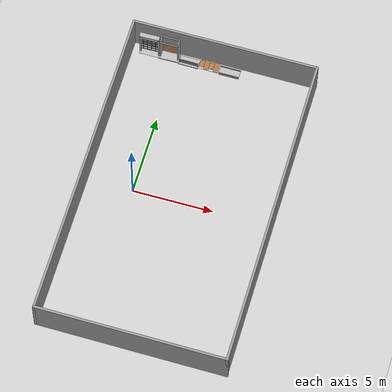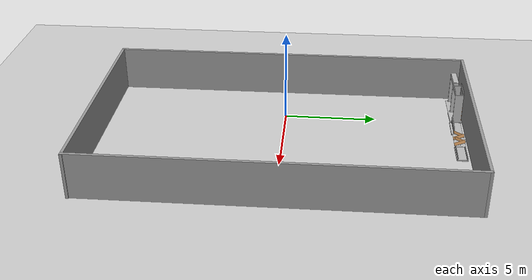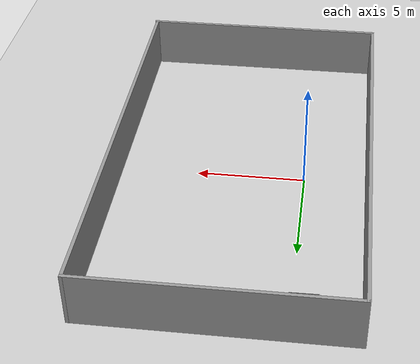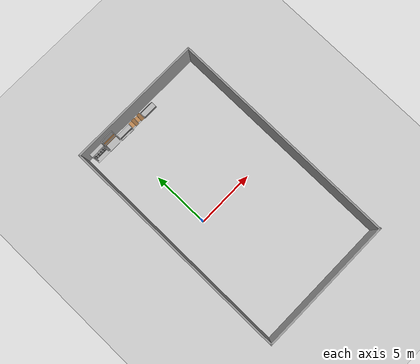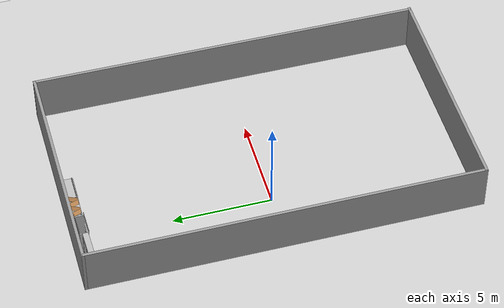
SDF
<sdf version="1.7">
 <world name="default">
  <light name="sun" type="directional">
   <pose>0 0 10 0 -0 0</pose>
   <diffuse>0.8 0.8 0.8 1</diffuse>
   <specular>0.2 0.2 0.2 1</specular>
   <attenuation>
    <range>1000</range>
    <constant>0.9</constant>
    <linear>0.01</linear>
    <quadratic>0.001</quadratic>
   </attenuation>
   <direction>-0.5 0.1 -0.9</direction>
   <spot><inner_angle>0</inner_angle><outer_angle>0</outer_angle><falloff>0</falloff></spot>
  </light>
  <model name="ground_plane">
   <static>1</static>
   <link name="link">
    <collision name="collision">
     <geometry><plane><normal>0 0 1</normal><size>100 100</size></plane></geometry>
     <surface>
      <contact><collide_bitmask>65535</collide_bitmask></contact>
      <friction><ode><mu>100</mu><mu2>50</mu2></ode></friction>
     </surface>
    </collision>
    <visual name="visual">
     <cast_shadows>0</cast_shadows>
     <geometry><plane><normal>0 0 1</normal><size>100 100</size></plane></geometry>
     <material>
      <script><uri>file://media/materials/scripts/gazebo.material</uri><name>Gazebo/Grey</name></script>
     </material>
    </visual>
   </link>
  </model>
  <gravity>0 0 -9.8</gravity>
  <magnetic_field>6e-06 2.3e-05 -4.2e-05</magnetic_field>
  <atmosphere type="adiabatic"/>
  <physics type="ode">
   <max_step_size>0.001</max_step_size>
   <real_time_factor>1</real_time_factor>
   <real_time_update_rate>1000</real_time_update_rate>
  </physics>
  <scene><ambient>0.4 0.4 0.4 1</ambient><background>0.7 0.7 0.7 1</background><shadows>1</shadows></scene>
  <audio><device>default</device></audio>
  <spherical_coordinates>
   <surface_model>EARTH_WGS84</surface_model>
   <latitude_deg>0</latitude_deg>
   <longitude_deg>0</longitude_deg>
   <elevation>0</elevation>
   <heading_deg>0</heading_deg>
  </spherical_coordinates>
  <model name="wallsss">
   <pose>2.90151 0.021136 0 0 -0 0</pose>
   <link name="Wall_0">
    <collision name="Wall_0_Collision">
     <geometry><box><size>11.75 0.15 2.5</size></box></geometry>
     <pose>0 0 1.25 0 -0 0</pose>
    </collision>
    <visual name="Wall_0_Visual">
     <pose>0 0 1.25 0 -0 0</pose>
     <geometry><box><size>11.75 0.15 2.5</size></box></geometry>
     <material>
      <script><uri>file://media/materials/scripts/gazebo.material</uri><name>Gazebo/Grey</name></script>
      <ambient>1 1 1 1</ambient>
     </material>
     <meta><layer>0</layer></meta>
    </visual>
    <pose>0.023262 -9.925 0 0 -0 0</pose>
   </link>
   <link name="Wall_1">
    <collision name="Wall_1_Collision">
     <geometry><box><size>20 0.15 2.5</size></box></geometry>
     <pose>0 0 1.25 0 -0 0</pose>
    </collision>
    <visual name="Wall_1_Visual">
     <pose>0 0 1.25 0 -0 0</pose>
     <geometry><box><size>20 0.15 2.5</size></box></geometry>
     <material>
      <script><uri>file://media/materials/scripts/gazebo.material</uri><name>Gazebo/Grey</name></script>
      <ambient>1 1 1 1</ambient>
     </material>
     <meta><layer>0</layer></meta>
    </visual>
    <pose>5.77674 -0 0 0 -0 1.5708</pose>
   </link>
   <link name="Wall_2">
    <collision name="Wall_2_Collision">
     <geometry><box><size>11.75 0.15 2.5</size></box></geometry>
     <pose>0 0 1.25 0 -0 0</pose>
    </collision>
    <visual name="Wall_2_Visual">
     <pose>0 0 1.25 0 -0 0</pose>
     <geometry><box><size>11.75 0.15 2.5</size></box></geometry>
     <material>
      <script><uri>file://media/materials/scripts/gazebo.material</uri><name>Gazebo/Grey</name></script>
      <ambient>1 1 1 1</ambient>
     </material>
     <meta><layer>0</layer></meta>
    </visual>
    <pose>-0.023261 9.925 0 0 -0 3.14159</pose>
   </link>
   <link name="Wall_3">
    <collision name="Wall_3_Collision">
     <geometry><box><size>20 0.15 2.5</size></box></geometry>
     <pose>0 0 1.25 0 -0 0</pose>
    </collision>
    <visual name="Wall_3_Visual">
     <pose>0 0 1.25 0 -0 0</pose>
     <geometry><box><size>20 0.15 2.5</size></box></geometry>
     <material>
      <script><uri>file://media/materials/scripts/gazebo.material</uri><name>Gazebo/Grey</name></script>
      <ambient>1 1 1 1</ambient>
     </material>
     <meta><layer>0</layer></meta>
    </visual>
    <pose>-5.82326 -0 0 0 -0 -1.5708</pose>
   </link>
   <static>1</static>
  </model>
  <model name="frc2016_chevaldefrise">
   <link name="base">
    <inertial>
     <mass>10</mass>
     <pose>0 0 0.15672 0 -0 0</pose>
     <inertia><ixx>0.380221</ixx><ixy>0</ixy><ixz>0</ixz><iyy>1.43365</iyy><iyz>0</iyz><izz>1.64745</izz></inertia>
    </inertial>
    <visual name="platform">
     <pose>0 0 0.06968 0 -0 0</pose>
     <geometry><box><size>1.27 0.5969 0.003175</size></box></geometry>
    </visual>
    <collision name="platform">
     <pose>0 0 0.06968 0 -0 0</pose>
     <geometry><box><size>1.27 0.5969 0.003175</size></box></geometry>
    </collision>
    <visual name="bar">
     <pose>0 0 0.16855 0 1.5707 0</pose>
     <geometry><cylinder><radius>0.02108</radius><length>1.273</length></cylinder></geometry>
    </visual>
    <collision name="bar">
     <pose>0 0 0.16855 0 1.5707 0</pose>
     <geometry><cylinder><radius>0.02108</radius><length>1.27</length></cylinder></geometry>
    </collision>
    <visual name="castor1">
     <pose>-0.45653 -0.16581 0.03175 0 -0 0</pose>
     <geometry><sphere><radius>0.03175</radius></sphere></geometry>
    </visual>
    <collision name="castor1">
     <pose>-0.45653 -0.16581 0.03175 0 -0 0</pose>
     <geometry><sphere><radius>0.03175</radius></sphere></geometry>
    </collision>
    <visual name="castor2">
     <pose>-0.27855 0.21408 0.03175 0 -0 0</pose>
     <geometry><sphere><radius>0.03175</radius></sphere></geometry>
    </visual>
    <collision name="castor2">
     <pose>-0.27855 0.21408 0.03175 0 -0 0</pose>
     <geometry><sphere><radius>0.03175</radius></sphere></geometry>
    </collision>
    <visual name="castor3">
     <pose>0.28191 0.21419 0.03175 0 -0 0</pose>
     <geometry><sphere><radius>0.03175</radius></sphere></geometry>
    </visual>
    <collision name="castor3">
     <pose>0.28191 0.21419 0.03175 0 -0 0</pose>
     <geometry><sphere><radius>0.03175</radius></sphere></geometry>
    </collision>
    <visual name="castor4">
     <pose>0.45965 -0.16602 0.03175 0 -0 0</pose>
     <geometry><sphere><radius>0.03175</radius></sphere></geometry>
    </visual>
    <collision name="castor4">
     <pose>0.45965 -0.16602 0.03175 0 -0 0</pose>
     <geometry><sphere><radius>0.03175</radius></sphere></geometry>
    </collision>
   </link>
   <link name="slant1">
    <pose>-0.4572 0.01307 0.1997 -0.39732 0 0</pose>
    <inertial>
     <pose>0 0.1 0 0 -0 0</pose>
     <mass>2</mass>
     <inertia>
      <ixx>0.0606857</ixx>
      <ixy>0</ixy>
      <ixz>0</ixz>
      <iyy>0.0148723</iyy>
      <iyz>0</iyz>
      <izz>0.0755042</izz>
     </inertia>
    </inertial>
    <visual name="visual">
     <geometry><box><size>0.29845 0.593285 0.0127</size></box></geometry>
     <material><script><name>Gazebo/WoodFloor</name><uri>__default__</uri></script></material>
    </visual>
    <collision name="collision"><geometry><box><size>0.29845 0.593285 0.0127</size></box></geometry></collision>
   </link>
   <link name="slant2">
    <pose>-0.1524 -0.01307 0.1997 0.39732 -0 0</pose>
    <inertial>
     <mass>2</mass>
     <pose>0 -0.1 0 0 -0 0</pose>
     <inertia>
      <ixx>0.0606857</ixx>
      <ixy>0</ixy>
      <ixz>0</ixz>
      <iyy>0.0148723</iyy>
      <iyz>0</iyz>
      <izz>0.0755042</izz>
     </inertia>
    </inertial>
    <visual name="visual">
     <geometry><box><size>0.29845 0.593285 0.0127</size></box></geometry>
     <material><script><name>Gazebo/WoodFloor</name><uri>__default__</uri></script></material>
    </visual>
    <collision name="collision"><geometry><box><size>0.29845 0.593285 0.0127</size></box></geometry></collision>
   </link>
   <link name="slant3">
    <pose>0.1524 0.01307 0.1997 -0.39732 0 0</pose>
    <inertial>
     <pose>0 0.1 0 0 -0 0</pose>
     <mass>2</mass>
     <inertia>
      <ixx>0.0606857</ixx>
      <ixy>0</ixy>
      <ixz>0</ixz>
      <iyy>0.0148723</iyy>
      <iyz>0</iyz>
      <izz>0.0755042</izz>
     </inertia>
    </inertial>
    <visual name="visual">
     <geometry><box><size>0.29845 0.593285 0.0127</size></box></geometry>
     <material><script><name>Gazebo/WoodFloor</name><uri>__default__</uri></script></material>
    </visual>
    <collision name="collision"><geometry><box><size>0.29845 0.593285 0.0127</size></box></geometry></collision>
   </link>
   <link name="slant4">
    <pose>0.4572 -0.01307 0.1997 0.39732 -0 0</pose>
    <inertial>
     <pose>0 -0.1 0 0 -0 0</pose>
     <mass>2</mass>
     <inertia>
      <ixx>0.0606857</ixx>
      <ixy>0</ixy>
      <ixz>0</ixz>
      <iyy>0.0148723</iyy>
      <iyz>0</iyz>
      <izz>0.0755042</izz>
     </inertia>
    </inertial>
    <visual name="visual">
     <geometry><box><size>0.29845 0.593285 0.0127</size></box></geometry>
     <material><script><name>Gazebo/WoodFloor</name><uri>__default__</uri></script></material>
    </visual>
    <collision name="collision"><geometry><box><size>0.29845 0.593285 0.0127</size></box></geometry></collision>
   </link>
   <joint name="slant1_joint" type="revolute">
    <parent>base</parent>
    <child>slant1</child>
    <axis>
     <xyz>1 0 0</xyz>
     <limit><lower>0</lower><upper>1.5707</upper></limit>
     <dynamics><spring_reference>0</spring_reference><spring_stiffness>0</spring_stiffness></dynamics>
    </axis>
   </joint>
   <joint name="slant2_joint" type="revolute">
    <parent>base</parent>
    <child>slant2</child>
    <axis>
     <xyz>1 0 0</xyz>
     <limit><lower>-1.5707</lower><upper>0</upper></limit>
     <dynamics><spring_reference>0</spring_reference><spring_stiffness>0</spring_stiffness></dynamics>
    </axis>
   </joint>
   <joint name="slant3_joint" type="revolute">
    <parent>base</parent>
    <child>slant3</child>
    <axis>
     <xyz>1 0 0</xyz>
     <limit><lower>0</lower><upper>1.5707</upper></limit>
     <dynamics><spring_reference>0</spring_reference><spring_stiffness>0</spring_stiffness></dynamics>
    </axis>
   </joint>
   <joint name="slant4_joint" type="revolute">
    <parent>base</parent>
    <child>slant4</child>
    <axis>
     <xyz>1 0 0</xyz>
     <limit><lower>-1.5707</lower><upper>0</upper></limit>
     <dynamics><spring_reference>0</spring_reference><spring_stiffness>0</spring_stiffness></dynamics>
    </axis>
   </joint>
   <pose>2.03696 9.47491 -0 0 0 -0.016139</pose>
  </model>
  <model name="frc2016_drawbridge">
   <link name="base">
    <inertial>
     <mass>10</mass>
     <pose>0 0 1 0 -0 0</pose>
     <inertia><ixx>3.64907</ixx><ixy>0</ixy><ixz>0</ixz><iyy>4.67075</iyy><iyz>0</iyz><izz>1.66649</izz></inertia>
    </inertial>
    <visual name="platform">
     <pose>0 0 0.0425 0 -0 0</pose>
     <geometry><box><size>1.27 0.5969 0.085</size></box></geometry>
    </visual>
    <collision name="platform">
     <pose>0 0 0.0425 0 -0 0</pose>
     <geometry><box><size>1.27 0.5969 0.085</size></box></geometry>
    </collision>
    <visual name="right_wall">
     <pose>0.55879 0.04444 0.889 0 -0 0</pose>
     <geometry><box><size>0.05715 0.45698 1.77165</size></box></geometry>
    </visual>
    <collision name="right_wall">
     <pose>0.55879 0.04444 0.889 0 -0 0</pose>
     <geometry><box><size>0.05715 0.45698 1.77165</size></box></geometry>
    </collision>
    <visual name="left_wall">
     <pose>-0.55879 0.04444 0.889 0 -0 0</pose>
     <geometry><box><size>0.05715 0.45698 1.77165</size></box></geometry>
    </visual>
    <collision name="left_wall">
     <pose>-0.55879 0.04444 0.889 0 -0 0</pose>
     <geometry><box><size>0.05715 0.45698 1.77165</size></box></geometry>
    </collision>
    <visual name="front_upper_wall">
     <pose>0 0.27611 1.84286 0 -0 0</pose>
     <geometry><box><size>1.1557 0.006347 0.254</size></box></geometry>
    </visual>
    <collision name="front_upper_wall">
     <pose>0 0.27611 1.84286 0 -0 0</pose>
     <geometry><box><size>1.1557 0.006347 0.254</size></box></geometry>
    </collision>
    <visual name="back_upper_wall">
     <pose>0 -0.18722 1.84286 0 -0 0</pose>
     <geometry><box><size>1.1557 0.006347 0.254</size></box></geometry>
    </visual>
    <collision name="back_upper_wall">
     <pose>0 -0.18722 1.84286 0 -0 0</pose>
     <geometry><box><size>1.1557 0.006347 0.254</size></box></geometry>
    </collision>
   </link>
   <link name="bridge">
    <pose>0 0.28245 0.50577 0 -0 0</pose>
    <inertial>
     <mass>2</mass>
     <pose>0 -0.28245 -0.50577 0 -0 0</pose>
     <inertia>
      <ixx>0.139361</ixx>
      <ixy>0</ixy>
      <ixz>0</ixz>
      <iyy>0.357088</iyy>
      <iyz>0</iyz>
      <izz>0.217741</izz>
     </inertia>
    </inertial>
    <visual name="visual">
     <geometry><box><size>1.14298 0.006347 0.9144</size></box></geometry>
     <material><script><name>Gazebo/WoodFloor</name><uri>__default__</uri></script></material>
    </visual>
    <collision name="collision"><geometry><box><size>1.14298 0.006347 0.9144</size></box></geometry></collision>
   </link>
   <joint name="bridge_joint" type="revolute">
    <pose>0 0 -0.4172 0 -0 0</pose>
    <parent>base</parent>
    <child>bridge</child>
    <axis>
     <xyz>1 0 0</xyz>
     <limit><lower>-2</lower><upper>0</upper></limit>
     <dynamics><spring_reference>0</spring_reference><spring_stiffness>0</spring_stiffness></dynamics>
    </axis>
   </joint>
   <pose>-0.512284 9.49408 -0 0 -0 0.015749</pose>
  </model>
  <model name="frc2016_lowbar">
   <link name="base">
    <inertial>
     <mass>50</mass>
     <inertia>
      <ixx>0.035543</ixx>
      <ixy>0</ixy>
      <ixz>0</ixz>
      <iyy>0.134412</iyy>
      <iyz>0</iyz>
      <izz>0.165376</izz>
     </inertia>
    </inertial>
    <visual name="platform">
     <pose>0 0 0.039065 0 -0 0</pose>
     <geometry><box><size>1.26 0.5996 0.07813</size></box></geometry>
    </visual>
    <collision name="platform">
     <pose>0 0 0.039065 0 -0 0</pose>
     <geometry><box><size>1.27 0.6096 0.07813</size></box></geometry>
    </collision>
    <visual name="right_column">
     <pose>-0.57845 -0.18464 0.26863 0 -0 0</pose>
     <geometry><cylinder><radius>0.0254</radius><length>0.381</length></cylinder></geometry>
    </visual>
    <collision name="right_column">
     <pose>-0.57845 -0.18464 0.26863 0 -0 0</pose>
     <geometry><cylinder><radius>0.0254</radius><length>0.381</length></cylinder></geometry>
    </collision>
    <visual name="left_column">
     <pose>0.57845 -0.18464 0.26863 0 -0 0</pose>
     <geometry><cylinder><radius>0.0254</radius><length>0.381</length></cylinder></geometry>
    </visual>
    <collision name="left_column">
     <pose>0.57845 -0.18464 0.26863 0 -0 0</pose>
     <geometry><cylinder><radius>0.0254</radius><length>0.381</length></cylinder></geometry>
    </collision>
    <visual name="horizontal">
     <pose>0 -0.18464 0.43556 0 1.5707 0</pose>
     <geometry><cylinder><radius>0.0254</radius><length>1.2018</length></cylinder></geometry>
    </visual>
    <collision name="horizontal">
     <pose>0 -0.18464 0.43556 0 1.5707 0</pose>
     <geometry><cylinder><radius>0.0254</radius><length>1.2018</length></cylinder></geometry>
    </collision>
   </link>
   <link name="wall">
    <pose>0 -0.1778 0.24323 0 -0 0</pose>
    <inertial>
     <mass>1</mass>
     <inertia>
      <ixx>0.00774528</ixx>
      <ixy>0</ixy>
      <ixz>0</ixz>
      <iyy>0.116613</iyy>
      <iyz>0</iyz>
      <izz>0.108874</izz>
     </inertia>
    </inertial>
    <visual name="visual">
     <geometry><box><size>1.1176 0.00635 0.3</size></box></geometry>
     <material><ambient>0.46 0.46 0.46 1</ambient><diffuse>0.46 0.46 0.46 1</diffuse></material>
    </visual>
    <collision name="collision"><geometry><box><size>1.143 0.00635 0.3</size></box></geometry></collision>
   </link>
   <joint name="bar_joint" type="revolute">
    <pose>0 0 0.36378 0 -0 0</pose>
    <parent>base</parent>
    <child>wall</child>
    <axis>
     <xyz>1 0 0</xyz>
     <limit><lower>-1.5707</lower><upper>1.5707</upper></limit>
     <dynamics><spring_reference>0</spring_reference><spring_stiffness>0</spring_stiffness></dynamics>
    </axis>
   </joint>
   <pose>0.765303 9.45148 -3.5e-05 0 5.5e-05 -0.011871</pose>
  </model>
  <model name="frc2016_portcullis">
   <link name="base">
    <inertial>
     <mass>50</mass>
     <pose>0 0 1.02941 0 -0 0</pose>
     <inertia><ixx>3.81711</ixx><ixy>0</ixy><ixz>0</ixz><iyy>4.87698</iyy><iyz>0</iyz><izz>1.6283</izz></inertia>
    </inertial>
    <visual name="platform">
     <pose>0 0 0.07284 0 -0 0</pose>
     <geometry><box><size>1.27 0.5842 0.003175</size></box></geometry>
    </visual>
    <collision name="platform">
     <pose>0 0 0.07284 0 -0 0</pose>
     <geometry><box><size>1.27 0.5842 0.003175</size></box></geometry>
    </collision>
    <visual name="left_column">
     <pose>0.59284 0 0.99042 0 -0 0</pose>
     <geometry><box><size>0.08375 0.28575 1.83198</size></box></geometry>
    </visual>
    <collision name="left_column">
     <pose>0.59284 0 0.99042 0 -0 0</pose>
     <geometry><box><size>0.08375 0.28575 1.83198</size></box></geometry>
    </collision>
    <visual name="right_column">
     <pose>-0.57759 0 0.99042 0 -0 0</pose>
     <geometry><box><size>0.08375 0.28575 1.83198</size></box></geometry>
    </visual>
    <collision name="right_column">
     <pose>-0.57759 0 0.99042 0 -0 0</pose>
     <geometry><box><size>0.08375 0.28575 1.83198</size></box></geometry>
    </collision>
    <visual name="top">
     <pose>-0.00034 0 1.77722 0 -0 0</pose>
     <geometry><box><size>1.22962 0.28575 0.26657</size></box></geometry>
    </visual>
    <collision name="top">
     <pose>-0.00034 0 1.77722 0 -0 0</pose>
     <geometry><box><size>1.22962 0.28575 0.26657</size></box></geometry>
    </collision>
    <visual name="castor1">
     <pose>-0.45651 -0.16234 0.03272 0 -0 0</pose>
     <geometry><sphere><radius>0.03272</radius></sphere></geometry>
    </visual>
    <collision name="castor1">
     <pose>-0.45651 -0.16234 0.03272 0 -0 0</pose>
     <geometry><sphere><radius>0.03272</radius></sphere></geometry>
    </collision>
    <visual name="castor2">
     <pose>-0.27883 0.21836 0.03272 0 -0 0</pose>
     <geometry><sphere><radius>0.03272</radius></sphere></geometry>
    </visual>
    <collision name="castor2">
     <pose>-0.27883 0.21836 0.03272 0 -0 0</pose>
     <geometry><sphere><radius>0.03272</radius></sphere></geometry>
    </collision>
    <visual name="castor3">
     <pose>0.28083 0.21906 0.03272 0 -0 0</pose>
     <geometry><sphere><radius>0.03272</radius></sphere></geometry>
    </visual>
    <collision name="castor3">
     <pose>0.28083 0.21906 0.03272 0 -0 0</pose>
     <geometry><sphere><radius>0.03272</radius></sphere></geometry>
    </collision>
    <visual name="castor4">
     <pose>0.45871 -0.16186 0.03272 0 -0 0</pose>
     <geometry><sphere><radius>0.03272</radius></sphere></geometry>
    </visual>
    <collision name="castor4">
     <pose>0.45871 -0.16186 0.03272 0 -0 0</pose>
     <geometry><sphere><radius>0.03272</radius></sphere></geometry>
    </collision>
   </link>
   <link name="gate">
    <pose>-0.0287 0.02885 0.93327 0 -0 0</pose>
    <inertial>
     <mass>2</mass>
     <inertia><ixx>3.81711</ixx><ixy>0</ixy><ixz>0</ixz><iyy>4.87698</iyy><iyz>0</iyz><izz>1.6283</izz></inertia>
    </inertial>
    <collision name="collision"><geometry><box><size>1.1938 0.02496 1.45732</size></box></geometry></collision>
    <visual name="horz_1">
     <pose>0 0 -0.70326 0 -0 0</pose>
     <geometry><box><size>1.1938 0.02496 0.0508</size></box></geometry>
     <material><ambient>0.4 0.4 0.4 1</ambient><diffuse>0.4 0.4 0.4 1</diffuse></material>
    </visual>
    <visual name="horz_2">
     <pose>0 0 -0.44926 0 -0 0</pose>
     <geometry><box><size>1.1938 0.02496 0.0508</size></box></geometry>
     <material><ambient>0.4 0.4 0.4 1</ambient><diffuse>0.4 0.4 0.4 1</diffuse></material>
    </visual>
    <visual name="horz_3">
     <pose>0 0 -0.14517 0 -0 0</pose>
     <geometry><box><size>1.1938 0.02496 0.0508</size></box></geometry>
     <material><ambient>0.4 0.4 0.4 1</ambient><diffuse>0.4 0.4 0.4 1</diffuse></material>
    </visual>
    <visual name="horz_4">
     <pose>0 0 0.16034 0 -0 0</pose>
     <geometry><box><size>1.1938 0.02496 0.0508</size></box></geometry>
     <material><ambient>0.4 0.4 0.4 1</ambient><diffuse>0.4 0.4 0.4 1</diffuse></material>
    </visual>
    <visual name="horz_5">
     <pose>0 0 0.46514 0 -0 0</pose>
     <geometry><box><size>1.1938 0.02496 0.0508</size></box></geometry>
     <material><ambient>0.4 0.4 0.4 1</ambient><diffuse>0.4 0.4 0.4 1</diffuse></material>
    </visual>
    <visual name="horz_6">
     <pose>0 0 0.72994 0 -0 0</pose>
     <geometry><box><size>1.1938 0.02496 0.0508</size></box></geometry>
     <material><ambient>0.4 0.4 0.4 1</ambient><diffuse>0.4 0.4 0.4 1</diffuse></material>
    </visual>
    <visual name="vert_1">
     <pose>-0.58448 0 0 0 -0 0</pose>
     <geometry><box><size>0.02495 0.02496 1.45732</size></box></geometry>
     <material><ambient>0.4 0.4 0.4 1</ambient><diffuse>0.4 0.4 0.4 1</diffuse></material>
    </visual>
    <visual name="vert_2">
     <pose>-0.38128 0 0 0 -0 0</pose>
     <geometry><box><size>0.0508 0.02496 1.45732</size></box></geometry>
     <material><ambient>0.4 0.4 0.4 1</ambient><diffuse>0.4 0.4 0.4 1</diffuse></material>
    </visual>
    <visual name="vert_3">
     <pose>-0.12728 0 0 0 -0 0</pose>
     <geometry><box><size>0.0508 0.02496 1.45732</size></box></geometry>
     <material><ambient>0.4 0.4 0.4 1</ambient><diffuse>0.4 0.4 0.4 1</diffuse></material>
    </visual>
    <visual name="vert_4">
     <pose>0.12672 0 0 0 -0 0</pose>
     <geometry><box><size>0.0508 0.02496 1.45732</size></box></geometry>
     <material><ambient>0.4 0.4 0.4 1</ambient><diffuse>0.4 0.4 0.4 1</diffuse></material>
    </visual>
    <visual name="vert_5">
     <pose>0.38072 0 0 0 -0 0</pose>
     <geometry><box><size>0.0508 0.02496 1.45732</size></box></geometry>
     <material><ambient>0.4 0.4 0.4 1</ambient><diffuse>0.4 0.4 0.4 1</diffuse></material>
    </visual>
    <visual name="vert_6">
     <pose>0.58392 0 0 0 -0 0</pose>
     <geometry><box><size>0.02495 0.02496 1.45732</size></box></geometry>
     <material><ambient>0.4 0.4 0.4 1</ambient><diffuse>0.4 0.4 0.4 1</diffuse></material>
    </visual>
   </link>
   <joint name="joint" type="prismatic">
    <parent>base</parent>
    <child>gate</child>
    <axis>
     <xyz>0 0 1</xyz>
     <limit><lower>0</lower><upper>1</upper></limit>
     <dynamics><spring_reference>0</spring_reference><spring_stiffness>0</spring_stiffness></dynamics>
    </axis>
   </joint>
   <pose>-1.78219 9.4778 -0 -1e-06 -0 0.015753</pose>
  </model>
  <model name="frc2016_moat">
   <static>1</static>
   <link name="link">
    <inertial>
     <mass>10</mass>
     <pose>0 0 0.06738 0 -0 0</pose>
     <inertia><ixx>0.312195</ixx><ixy>0</ixy><ixz>0</ixz><iyy>1.35927</iyy><iyz>0</iyz><izz>1.64109</izz></inertia>
    </inertial>
    <visual name="platform">
     <pose>0 0 0.0381 0 -0 0</pose>
     <geometry><box><size>1.27 0.5969 0.0762</size></box></geometry>
    </visual>
    <collision name="platform">
     <pose>0 0 0.0381 0 -0 0</pose>
     <geometry><box><size>1.27 0.5969 0.0762</size></box></geometry>
    </collision>
    <visual name="tube1_side1">
     <pose>0 -0.25876 0.10301 0 -0 0</pose>
     <geometry><box><size>1.27 0.003175 0.0635</size></box></geometry>
     <material><ambient>0.46 0.46 0.46 1</ambient><diffuse>0.46 0.46 0.46 1</diffuse></material>
    </visual>
    <collision name="tube1_side1">
     <pose>0 -0.25876 0.10301 0 -0 0</pose>
     <geometry><box><size>1.27 0.003175 0.0635</size></box></geometry>
    </collision>
    <visual name="tube1_side2">
     <pose>0 -0.22384 0.10301 0 -0 0</pose>
     <geometry><box><size>1.27 0.003175 0.0635</size></box></geometry>
     <material><ambient>0.46 0.46 0.46 1</ambient><diffuse>0.46 0.46 0.46 1</diffuse></material>
    </visual>
    <collision name="tube1_side2">
     <pose>0 -0.22384 0.10301 0 -0 0</pose>
     <geometry><box><size>1.27 0.003175 0.0635</size></box></geometry>
    </collision>
    <visual name="tube1_top">
     <pose>0 -0.2413 0.13317 0 -0 0</pose>
     <geometry><box><size>1.27 0.0381 0.003175</size></box></geometry>
     <material><ambient>0.46 0.46 0.46 1</ambient><diffuse>0.46 0.46 0.46 1</diffuse></material>
    </visual>
    <collision name="tube1_top">
     <pose>0 -0.2413 0.13317 0 -0 0</pose>
     <geometry><box><size>1.27 0.0381 0.003175</size></box></geometry>
    </collision>
    <visual name="tube2_side1">
     <pose>0 0.22384 0.10301 0 -0 0</pose>
     <geometry><box><size>1.27 0.003175 0.0635</size></box></geometry>
     <material><ambient>0.46 0.46 0.46 1</ambient><diffuse>0.46 0.46 0.46 1</diffuse></material>
    </visual>
    <collision name="tube2_side1">
     <pose>0 0.22384 0.10301 0 -0 0</pose>
     <geometry><box><size>1.27 0.003175 0.0635</size></box></geometry>
    </collision>
    <visual name="tube2_side2">
     <pose>0 0.25876 0.10301 0 -0 0</pose>
     <geometry><box><size>1.27 0.003175 0.0635</size></box></geometry>
     <material><ambient>0.46 0.46 0.46 1</ambient><diffuse>0.46 0.46 0.46 1</diffuse></material>
    </visual>
    <collision name="tube2_side2">
     <pose>0 0.25876 0.10301 0 -0 0</pose>
     <geometry><box><size>1.27 0.003175 0.0635</size></box></geometry>
    </collision>
    <visual name="tube2_top">
     <pose>0 0.2413 0.13317 0 -0 0</pose>
     <geometry><box><size>1.27 0.0381 0.003175</size></box></geometry>
     <material><ambient>0.46 0.46 0.46 1</ambient><diffuse>0.46 0.46 0.46 1</diffuse></material>
    </visual>
    <collision name="tube2_top">
     <pose>0 0.2413 0.13317 0 -0 0</pose>
     <geometry><box><size>1.27 0.0381 0.003175</size></box></geometry>
    </collision>
   </link>
   <pose>3.3575 9.4521 0 0 -0 0</pose>
  </model>
 </world>
</sdf>
